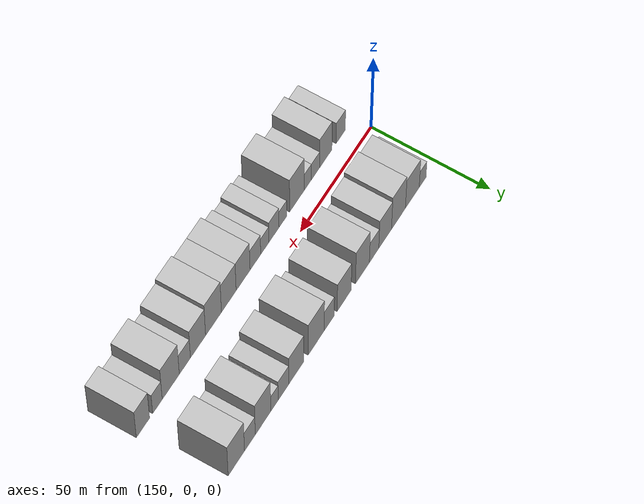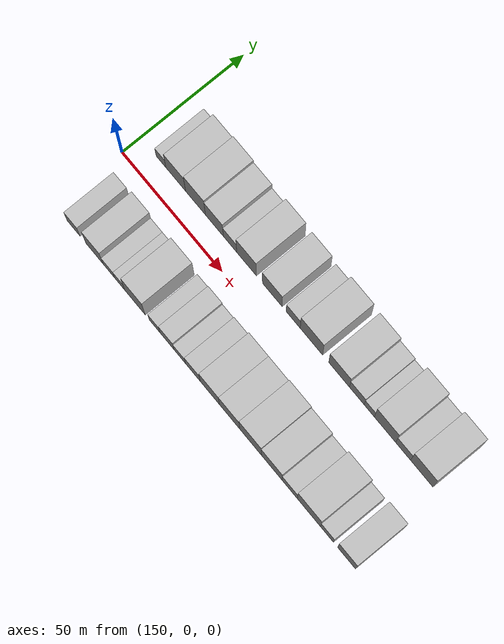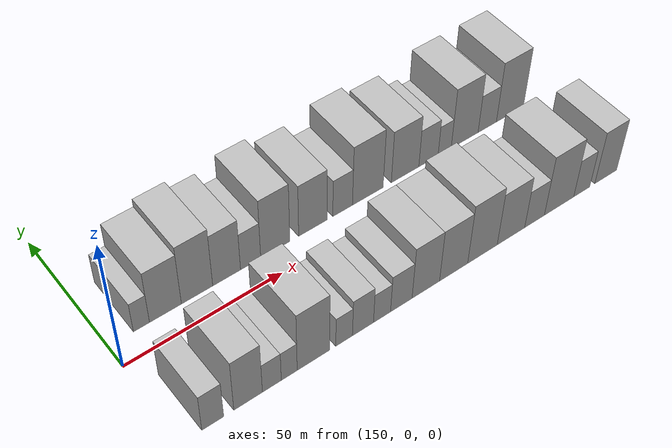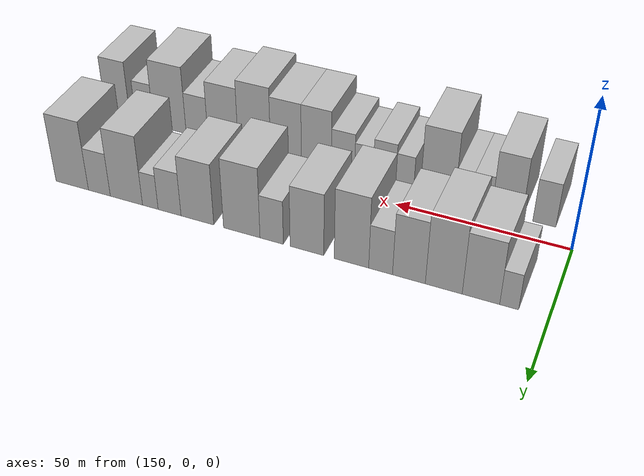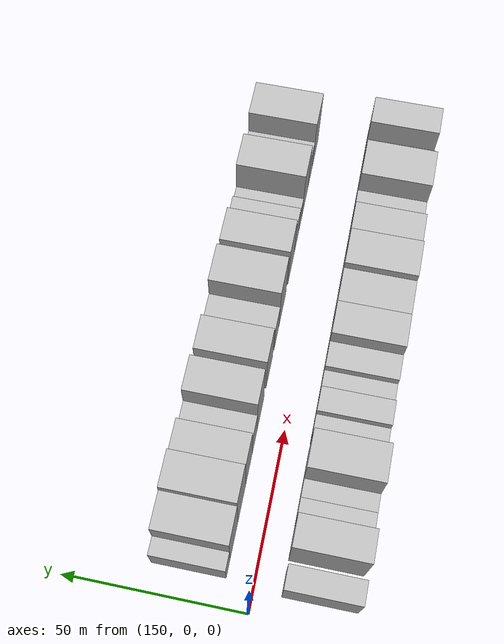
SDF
<sdf version="1.6">
 <world name="default">
  <model name="building_16">
   <static>1</static>
   <pose>160.2080 17.5000 0 0.000000 0.000000 1.570796</pose>
   <link name="link">
    <pose>0 0 6.00 0 0 0</pose>
    <collision name="collision"><geometry><box><size>20.0000 4.9205 12.0000</size></box></geometry></collision>
    <visual name="visual">
     <cast_shadows>0</cast_shadows>
     <geometry><box><size>20.0000 4.9205 12.0000</size></box></geometry>
     <material>
      <script>
       <uri>model://HANNAS_wall/materials/scripts</uri>
       <uri>model://HANNAS_wall/materials/textures</uri>
       <name>vrc/HANNAS_wall</name>
      </script>
     </material>
    </visual>
   </link>
  </model>
  <model name="building_17">
   <static>1</static>
   <pose>167.6149 17.5000 0 0.000000 0.000000 1.570796</pose>
   <link name="link">
    <pose>0 0 10.50 0 0 0</pose>
    <collision name="collision"><geometry><box><size>20.0000 9.8932 21.0000</size></box></geometry></collision>
    <visual name="visual">
     <cast_shadows>0</cast_shadows>
     <geometry><box><size>20.0000 9.8932 21.0000</size></box></geometry>
     <material>
      <script>
       <uri>model://HANNAS_wall/materials/scripts</uri>
       <uri>model://HANNAS_wall/materials/textures</uri>
       <name>vrc/HANNAS_wall</name>
      </script>
     </material>
    </visual>
   </link>
  </model>
  <model name="building_18">
   <static>1</static>
   <pose>177.5266 17.5000 0 0.000000 0.000000 1.570796</pose>
   <link name="link">
    <pose>0 0 12.00 0 0 0</pose>
    <collision name="collision"><geometry><box><size>20.0000 9.9304 24.0000</size></box></geometry></collision>
    <visual name="visual">
     <cast_shadows>0</cast_shadows>
     <geometry><box><size>20.0000 9.9304 24.0000</size></box></geometry>
     <material>
      <script>
       <uri>model://HANNAS_wall/materials/scripts</uri>
       <uri>model://HANNAS_wall/materials/textures</uri>
       <name>vrc/HANNAS_wall</name>
      </script>
     </material>
    </visual>
   </link>
  </model>
  <model name="building_19">
   <static>1</static>
   <pose>186.9951 17.5000 0 0.000000 0.000000 1.570796</pose>
   <link name="link">
    <pose>0 0 10.50 0 0 0</pose>
    <collision name="collision"><geometry><box><size>20.0000 9.0066 21.0000</size></box></geometry></collision>
    <visual name="visual">
     <cast_shadows>0</cast_shadows>
     <geometry><box><size>20.0000 9.0066 21.0000</size></box></geometry>
     <material>
      <script>
       <uri>model://HANNAS_wall/materials/scripts</uri>
       <uri>model://HANNAS_wall/materials/textures</uri>
       <name>vrc/HANNAS_wall</name>
      </script>
     </material>
    </visual>
   </link>
  </model>
  <model name="building_20">
   <static>1</static>
   <pose>194.8216 17.5000 0 0.000000 0.000000 1.570796</pose>
   <link name="link">
    <pose>0 0 7.50 0 0 0</pose>
    <collision name="collision"><geometry><box><size>20.0000 6.6463 15.0000</size></box></geometry></collision>
    <visual name="visual">
     <cast_shadows>0</cast_shadows>
     <geometry><box><size>20.0000 6.6463 15.0000</size></box></geometry>
     <material>
      <script>
       <uri>model://HANNAS_wall/materials/scripts</uri>
       <uri>model://HANNAS_wall/materials/textures</uri>
       <name>vrc/HANNAS_wall</name>
      </script>
     </material>
    </visual>
   </link>
  </model>
  <model name="building_21">
   <static>1</static>
   <pose>203.0337 17.5000 0 0.000000 0.000000 1.570796</pose>
   <link name="link">
    <pose>0 0 12.00 0 0 0</pose>
    <collision name="collision"><geometry><box><size>20.0000 9.7779 24.0000</size></box></geometry></collision>
    <visual name="visual">
     <cast_shadows>0</cast_shadows>
     <geometry><box><size>20.0000 9.7779 24.0000</size></box></geometry>
     <material>
      <script>
       <uri>model://HANNAS_wall/materials/scripts</uri>
       <uri>model://HANNAS_wall/materials/textures</uri>
       <name>vrc/HANNAS_wall</name>
      </script>
     </material>
    </visual>
   </link>
  </model>
  <model name="building_22">
   <static>1</static>
   <pose>215.8172 17.5000 0 0.000000 0.000000 1.570796</pose>
   <link name="link">
    <pose>0 0 10.50 0 0 0</pose>
    <collision name="collision"><geometry><box><size>20.0000 9.7892 21.0000</size></box></geometry></collision>
    <visual name="visual">
     <cast_shadows>0</cast_shadows>
     <geometry><box><size>20.0000 9.7892 21.0000</size></box></geometry>
     <material>
      <script>
       <uri>model://HANNAS_wall/materials/scripts</uri>
       <uri>model://HANNAS_wall/materials/textures</uri>
       <name>vrc/HANNAS_wall</name>
      </script>
     </material>
    </visual>
   </link>
  </model>
  <model name="building_23">
   <static>1</static>
   <pose>226.1819 17.5000 0 0.000000 0.000000 1.570796</pose>
   <link name="link">
    <pose>0 0 7.50 0 0 0</pose>
    <collision name="collision"><geometry><box><size>20.0000 6.9402 15.0000</size></box></geometry></collision>
    <visual name="visual">
     <cast_shadows>0</cast_shadows>
     <geometry><box><size>20.0000 6.9402 15.0000</size></box></geometry>
     <material>
      <script>
       <uri>model://HANNAS_wall/materials/scripts</uri>
       <uri>model://HANNAS_wall/materials/textures</uri>
       <name>vrc/HANNAS_wall</name>
      </script>
     </material>
    </visual>
   </link>
  </model>
  <model name="building_24">
   <static>1</static>
   <pose>235.1652 17.5000 0 0.000000 0.000000 1.570796</pose>
   <link name="link">
    <pose>0 0 12.00 0 0 0</pose>
    <collision name="collision"><geometry><box><size>20.0000 11.0265 24.0000</size></box></geometry></collision>
    <visual name="visual">
     <cast_shadows>0</cast_shadows>
     <geometry><box><size>20.0000 11.0265 24.0000</size></box></geometry>
     <material>
      <script>
       <uri>model://HANNAS_wall/materials/scripts</uri>
       <uri>model://HANNAS_wall/materials/textures</uri>
       <name>vrc/HANNAS_wall</name>
      </script>
     </material>
    </visual>
   </link>
  </model>
  <model name="building_25">
   <static>1</static>
   <pose>248.7692 17.5000 0 0.000000 0.000000 1.570796</pose>
   <link name="link">
    <pose>0 0 10.50 0 0 0</pose>
    <collision name="collision"><geometry><box><size>20.0000 10.1814 21.0000</size></box></geometry></collision>
    <visual name="visual">
     <cast_shadows>0</cast_shadows>
     <geometry><box><size>20.0000 10.1814 21.0000</size></box></geometry>
     <material>
      <script>
       <uri>model://HANNAS_wall/materials/scripts</uri>
       <uri>model://HANNAS_wall/materials/textures</uri>
       <name>vrc/HANNAS_wall</name>
      </script>
     </material>
    </visual>
   </link>
  </model>
  <model name="building_26">
   <static>1</static>
   <pose>257.4827 17.5000 0 0.000000 0.000000 1.570796</pose>
   <link name="link">
    <pose>0 0 7.50 0 0 0</pose>
    <collision name="collision"><geometry><box><size>20.0000 7.2456 15.0000</size></box></geometry></collision>
    <visual name="visual">
     <cast_shadows>0</cast_shadows>
     <geometry><box><size>20.0000 7.2456 15.0000</size></box></geometry>
     <material>
      <script>
       <uri>model://HANNAS_wall/materials/scripts</uri>
       <uri>model://HANNAS_wall/materials/textures</uri>
       <name>vrc/HANNAS_wall</name>
      </script>
     </material>
    </visual>
   </link>
  </model>
  <model name="building_27">
   <static>1</static>
   <pose>263.6017 17.5000 0 0.000000 0.000000 1.570796</pose>
   <link name="link">
    <pose>0 0 6.00 0 0 0</pose>
    <collision name="collision"><geometry><box><size>20.0000 4.9924 12.0000</size></box></geometry></collision>
    <visual name="visual">
     <cast_shadows>0</cast_shadows>
     <geometry><box><size>20.0000 4.9924 12.0000</size></box></geometry>
     <material>
      <script>
       <uri>model://HANNAS_wall/materials/scripts</uri>
       <uri>model://HANNAS_wall/materials/textures</uri>
       <name>vrc/HANNAS_wall</name>
      </script>
     </material>
    </visual>
   </link>
  </model>
  <model name="building_28">
   <static>1</static>
   <pose>271.3179 17.5000 0 0.000000 0.000000 1.570796</pose>
   <link name="link">
    <pose>0 0 12.00 0 0 0</pose>
    <collision name="collision"><geometry><box><size>20.0000 10.4401 24.0000</size></box></geometry></collision>
    <visual name="visual">
     <cast_shadows>0</cast_shadows>
     <geometry><box><size>20.0000 10.4401 24.0000</size></box></geometry>
     <material>
      <script>
       <uri>model://HANNAS_wall/materials/scripts</uri>
       <uri>model://HANNAS_wall/materials/textures</uri>
       <name>vrc/HANNAS_wall</name>
      </script>
     </material>
    </visual>
   </link>
  </model>
  <model name="building_29">
   <static>1</static>
   <pose>280.1564 17.5000 0 0.000000 0.000000 1.570796</pose>
   <link name="link">
    <pose>0 0 7.50 0 0 0</pose>
    <collision name="collision"><geometry><box><size>20.0000 7.2369 15.0000</size></box></geometry></collision>
    <visual name="visual">
     <cast_shadows>0</cast_shadows>
     <geometry><box><size>20.0000 7.2369 15.0000</size></box></geometry>
     <material>
      <script>
       <uri>model://HANNAS_wall/materials/scripts</uri>
       <uri>model://HANNAS_wall/materials/textures</uri>
       <name>vrc/HANNAS_wall</name>
      </script>
     </material>
    </visual>
   </link>
  </model>
  <model name="building_30">
   <static>1</static>
   <pose>289.2104 17.5000 0 0.000000 0.000000 1.570796</pose>
   <link name="link">
    <pose>0 0 12.00 0 0 0</pose>
    <collision name="collision"><geometry><box><size>20.0000 10.8711 24.0000</size></box></geometry></collision>
    <visual name="visual">
     <cast_shadows>0</cast_shadows>
     <geometry><box><size>20.0000 10.8711 24.0000</size></box></geometry>
     <material>
      <script>
       <uri>model://HANNAS_wall/materials/scripts</uri>
       <uri>model://HANNAS_wall/materials/textures</uri>
       <name>vrc/HANNAS_wall</name>
      </script>
     </material>
    </visual>
   </link>
  </model>
  <model name="building_46">
   <static>1</static>
   <pose>159.2428 -17.5000 0 0.000000 0.000000 1.570796</pose>
   <link name="link">
    <pose>0 0 7.50 0 0 0</pose>
    <collision name="collision"><geometry><box><size>20.0000 6.4851 15.0000</size></box></geometry></collision>
    <visual name="visual">
     <cast_shadows>0</cast_shadows>
     <geometry><box><size>20.0000 6.4851 15.0000</size></box></geometry>
     <material>
      <script>
       <uri>model://HANNAS_wall/materials/scripts</uri>
       <uri>model://HANNAS_wall/materials/textures</uri>
       <name>vrc/HANNAS_wall</name>
      </script>
     </material>
    </visual>
   </link>
  </model>
  <model name="building_47">
   <static>1</static>
   <pose>169.8238 -17.5000 0 0.000000 0.000000 1.570796</pose>
   <link name="link">
    <pose>0 0 10.50 0 0 0</pose>
    <collision name="collision"><geometry><box><size>20.0000 8.6770 21.0000</size></box></geometry></collision>
    <visual name="visual">
     <cast_shadows>0</cast_shadows>
     <geometry><box><size>20.0000 8.6770 21.0000</size></box></geometry>
     <material>
      <script>
       <uri>model://HANNAS_wall/materials/scripts</uri>
       <uri>model://HANNAS_wall/materials/textures</uri>
       <name>vrc/HANNAS_wall</name>
      </script>
     </material>
    </visual>
   </link>
  </model>
  <model name="building_48">
   <static>1</static>
   <pose>177.0725 -17.5000 0 0.000000 0.000000 1.570796</pose>
   <link name="link">
    <pose>0 0 6.00 0 0 0</pose>
    <collision name="collision"><geometry><box><size>20.0000 5.8204 12.0000</size></box></geometry></collision>
    <visual name="visual">
     <cast_shadows>0</cast_shadows>
     <geometry><box><size>20.0000 5.8204 12.0000</size></box></geometry>
     <material>
      <script>
       <uri>model://HANNAS_wall/materials/scripts</uri>
       <uri>model://HANNAS_wall/materials/textures</uri>
       <name>vrc/HANNAS_wall</name>
      </script>
     </material>
    </visual>
   </link>
  </model>
  <model name="building_49">
   <static>1</static>
   <pose>182.4619 -17.5000 0 0.000000 0.000000 1.570796</pose>
   <link name="link">
    <pose>0 0 6.00 0 0 0</pose>
    <collision name="collision"><geometry><box><size>20.0000 4.9583 12.0000</size></box></geometry></collision>
    <visual name="visual">
     <cast_shadows>0</cast_shadows>
     <geometry><box><size>20.0000 4.9583 12.0000</size></box></geometry>
     <material>
      <script>
       <uri>model://HANNAS_wall/materials/scripts</uri>
       <uri>model://HANNAS_wall/materials/textures</uri>
       <name>vrc/HANNAS_wall</name>
      </script>
     </material>
    </visual>
   </link>
  </model>
  <model name="building_50">
   <static>1</static>
   <pose>190.0836 -17.5000 0 0.000000 0.000000 1.570796</pose>
   <link name="link">
    <pose>0 0 12.00 0 0 0</pose>
    <collision name="collision"><geometry><box><size>20.0000 10.2850 24.0000</size></box></geometry></collision>
    <visual name="visual">
     <cast_shadows>0</cast_shadows>
     <geometry><box><size>20.0000 10.2850 24.0000</size></box></geometry>
     <material>
      <script>
       <uri>model://HANNAS_wall/materials/scripts</uri>
       <uri>model://HANNAS_wall/materials/textures</uri>
       <name>vrc/HANNAS_wall</name>
      </script>
     </material>
    </visual>
   </link>
  </model>
  <model name="building_51">
   <static>1</static>
   <pose>199.9391 -17.5000 0 0.000000 0.000000 1.570796</pose>
   <link name="link">
    <pose>0 0 6.00 0 0 0</pose>
    <collision name="collision"><geometry><box><size>20.0000 5.4261 12.0000</size></box></geometry></collision>
    <visual name="visual">
     <cast_shadows>0</cast_shadows>
     <geometry><box><size>20.0000 5.4261 12.0000</size></box></geometry>
     <material>
      <script>
       <uri>model://HANNAS_wall/materials/scripts</uri>
       <uri>model://HANNAS_wall/materials/textures</uri>
       <name>vrc/HANNAS_wall</name>
      </script>
     </material>
    </visual>
   </link>
  </model>
  <model name="building_52">
   <static>1</static>
   <pose>206.1290 -17.5000 0 0.000000 0.000000 1.570796</pose>
   <link name="link">
    <pose>0 0 7.50 0 0 0</pose>
    <collision name="collision"><geometry><box><size>20.0000 6.9537 15.0000</size></box></geometry></collision>
    <visual name="visual">
     <cast_shadows>0</cast_shadows>
     <geometry><box><size>20.0000 6.9537 15.0000</size></box></geometry>
     <material>
      <script>
       <uri>model://HANNAS_wall/materials/scripts</uri>
       <uri>model://HANNAS_wall/materials/textures</uri>
       <name>vrc/HANNAS_wall</name>
      </script>
     </material>
    </visual>
   </link>
  </model>
  <model name="building_53">
   <static>1</static>
   <pose>212.4621 -17.5000 0 0.000000 0.000000 1.570796</pose>
   <link name="link">
    <pose>0 0 6.00 0 0 0</pose>
    <collision name="collision"><geometry><box><size>20.0000 5.7126 12.0000</size></box></geometry></collision>
    <visual name="visual">
     <cast_shadows>0</cast_shadows>
     <geometry><box><size>20.0000 5.7126 12.0000</size></box></geometry>
     <material>
      <script>
       <uri>model://HANNAS_wall/materials/scripts</uri>
       <uri>model://HANNAS_wall/materials/textures</uri>
       <name>vrc/HANNAS_wall</name>
      </script>
     </material>
    </visual>
   </link>
  </model>
  <model name="building_54">
   <static>1</static>
   <pose>218.9770 -17.5000 0 0.000000 0.000000 1.570796</pose>
   <link name="link">
    <pose>0 0 7.50 0 0 0</pose>
    <collision name="collision"><geometry><box><size>20.0000 7.3172 15.0000</size></box></geometry></collision>
    <visual name="visual">
     <cast_shadows>0</cast_shadows>
     <geometry><box><size>20.0000 7.3172 15.0000</size></box></geometry>
     <material>
      <script>
       <uri>model://HANNAS_wall/materials/scripts</uri>
       <uri>model://HANNAS_wall/materials/textures</uri>
       <name>vrc/HANNAS_wall</name>
      </script>
     </material>
    </visual>
   </link>
  </model>
  <model name="building_55">
   <static>1</static>
   <pose>227.3933 -17.5000 0 0.000000 0.000000 1.570796</pose>
   <link name="link">
    <pose>0 0 10.50 0 0 0</pose>
    <collision name="collision"><geometry><box><size>20.0000 9.5154 21.0000</size></box></geometry></collision>
    <visual name="visual">
     <cast_shadows>0</cast_shadows>
     <geometry><box><size>20.0000 9.5154 21.0000</size></box></geometry>
     <material>
      <script>
       <uri>model://HANNAS_wall/materials/scripts</uri>
       <uri>model://HANNAS_wall/materials/textures</uri>
       <name>vrc/HANNAS_wall</name>
      </script>
     </material>
    </visual>
   </link>
  </model>
  <model name="building_56">
   <static>1</static>
   <pose>237.1351 -17.5000 0 0.000000 0.000000 1.570796</pose>
   <link name="link">
    <pose>0 0 10.50 0 0 0</pose>
    <collision name="collision"><geometry><box><size>20.0000 9.9682 21.0000</size></box></geometry></collision>
    <visual name="visual">
     <cast_shadows>0</cast_shadows>
     <geometry><box><size>20.0000 9.9682 21.0000</size></box></geometry>
     <material>
      <script>
       <uri>model://HANNAS_wall/materials/scripts</uri>
       <uri>model://HANNAS_wall/materials/textures</uri>
       <name>vrc/HANNAS_wall</name>
      </script>
     </material>
    </visual>
   </link>
  </model>
  <model name="building_57">
   <static>1</static>
   <pose>247.4711 -17.5000 0 0.000000 0.000000 1.570796</pose>
   <link name="link">
    <pose>0 0 12.00 0 0 0</pose>
    <collision name="collision"><geometry><box><size>20.0000 10.7038 24.0000</size></box></geometry></collision>
    <visual name="visual">
     <cast_shadows>0</cast_shadows>
     <geometry><box><size>20.0000 10.7038 24.0000</size></box></geometry>
     <material>
      <script>
       <uri>model://HANNAS_wall/materials/scripts</uri>
       <uri>model://HANNAS_wall/materials/textures</uri>
       <name>vrc/HANNAS_wall</name>
      </script>
     </material>
    </visual>
   </link>
  </model>
  <model name="building_58">
   <static>1</static>
   <pose>257.9120 -17.5000 0 0.000000 0.000000 1.570796</pose>
   <link name="link">
    <pose>0 0 10.50 0 0 0</pose>
    <collision name="collision"><geometry><box><size>20.0000 10.1780 21.0000</size></box></geometry></collision>
    <visual name="visual">
     <cast_shadows>0</cast_shadows>
     <geometry><box><size>20.0000 10.1780 21.0000</size></box></geometry>
     <material>
      <script>
       <uri>model://HANNAS_wall/materials/scripts</uri>
       <uri>model://HANNAS_wall/materials/textures</uri>
       <name>vrc/HANNAS_wall</name>
      </script>
     </material>
    </visual>
   </link>
  </model>
  <model name="building_59">
   <static>1</static>
   <pose>266.7210 -17.5000 0 0.000000 0.000000 1.570796</pose>
   <link name="link">
    <pose>0 0 7.50 0 0 0</pose>
    <collision name="collision"><geometry><box><size>20.0000 7.4400 15.0000</size></box></geometry></collision>
    <visual name="visual">
     <cast_shadows>0</cast_shadows>
     <geometry><box><size>20.0000 7.4400 15.0000</size></box></geometry>
     <material>
      <script>
       <uri>model://HANNAS_wall/materials/scripts</uri>
       <uri>model://HANNAS_wall/materials/textures</uri>
       <name>vrc/HANNAS_wall</name>
      </script>
     </material>
    </visual>
   </link>
  </model>
  <model name="building_60">
   <static>1</static>
   <pose>276.1010 -17.5000 0 0.000000 0.000000 1.570796</pose>
   <link name="link">
    <pose>0 0 12.00 0 0 0</pose>
    <collision name="collision"><geometry><box><size>20.0000 11.3201 24.0000</size></box></geometry></collision>
    <visual name="visual">
     <cast_shadows>0</cast_shadows>
     <geometry><box><size>20.0000 11.3201 24.0000</size></box></geometry>
     <material>
      <script>
       <uri>model://HANNAS_wall/materials/scripts</uri>
       <uri>model://HANNAS_wall/materials/textures</uri>
       <name>vrc/HANNAS_wall</name>
      </script>
     </material>
    </visual>
   </link>
  </model>
  <model name="building_61">
   <static>1</static>
   <pose>284.9104 -17.5000 0 0.000000 0.000000 1.570796</pose>
   <link name="link">
    <pose>0 0 7.50 0 0 0</pose>
    <collision name="collision"><geometry><box><size>20.0000 6.2987 15.0000</size></box></geometry></collision>
    <visual name="visual">
     <cast_shadows>0</cast_shadows>
     <geometry><box><size>20.0000 6.2987 15.0000</size></box></geometry>
     <material>
      <script>
       <uri>model://HANNAS_wall/materials/scripts</uri>
       <uri>model://HANNAS_wall/materials/textures</uri>
       <name>vrc/HANNAS_wall</name>
      </script>
     </material>
    </visual>
   </link>
  </model>
  <model name="building_62">
   <static>1</static>
   <pose>294.4269 -17.5000 0 0.000000 0.000000 1.570796</pose>
   <link name="link">
    <pose>0 0 10.50 0 0 0</pose>
    <collision name="collision"><geometry><box><size>20.0000 8.7344 21.0000</size></box></geometry></collision>
    <visual name="visual">
     <cast_shadows>0</cast_shadows>
     <geometry><box><size>20.0000 8.7344 21.0000</size></box></geometry>
     <material>
      <script>
       <uri>model://HANNAS_wall/materials/scripts</uri>
       <uri>model://HANNAS_wall/materials/textures</uri>
       <name>vrc/HANNAS_wall</name>
      </script>
     </material>
    </visual>
   </link>
  </model>
 </world>
</sdf>
